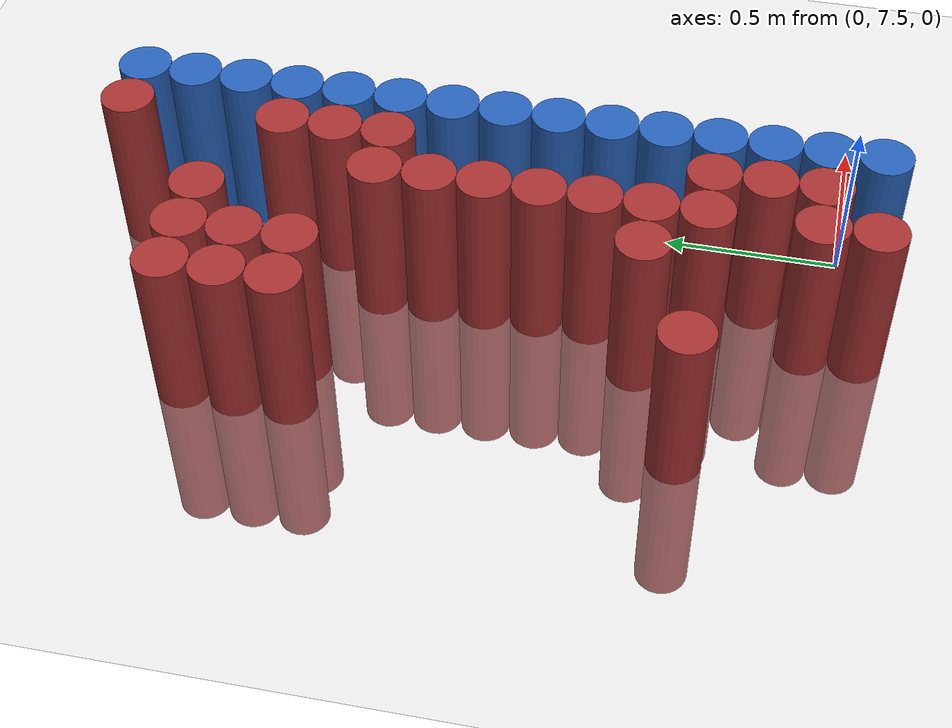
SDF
<sdf version="1.6">
 <world name="default">
  <model name="ground_plane">
   <static>1</static>
   <link name="link">
    <collision name="collision">
     <geometry><plane><normal>0 0 1</normal><size>100 100</size></plane></geometry>
     <surface><friction><ode><mu>100</mu><mu2>50</mu2></ode></friction></surface>
    </collision>
    <visual name="visual">
     <cast_shadows>0</cast_shadows>
     <geometry><plane><normal>0 0 1</normal><size>100 100</size></plane></geometry>
     <material>
      <script><uri>file://media/materials/scripts/gazebo.material</uri><name>Gazebo/Grey</name></script>
     </material>
    </visual>
   </link>
  </model>
  <model name="unit_cylinder_290">
   <static>1</static>
   <pose>-0.825000 7.875000 0.000000 0.000000 0.000000 0.000000</pose>
   <link name="link">
    <inertial>
     <mass>1</mass>
     <inertia><ixx>0.145833</ixx><ixy>0</ixy><ixz>0</ixz><iyy>0.145833</iyy><iyz>0</iyz><izz>0.125</izz></inertia>
    </inertial>
    <collision name="collision">
     <geometry><cylinder><radius>0.075000</radius><length>1</length></cylinder></geometry>
    </collision>
    <visual name="visual">
     <geometry><cylinder><radius>0.075000</radius><length>1</length></cylinder></geometry>
     <material>
      <ambient>0.648000 0.192000 0.192000 1</ambient>
      <diffuse>0.648000 0.192000 0.192000 1</diffuse>
     </material>
     <material>
      <script><name>Gazebo/Grey</name><uri>file://media/materials/scripts/gazebo.material</uri></script>
     </material>
    </visual>
    <sensor name="sensor_contact" type="contact"><contact><collision>collision</collision></contact></sensor>
   </link>
   <plugin filename="gz-sim-touchplugin-system" name="gz::sim::systems::TouchPlugin">
    <target>robot</target>
    <namespace>robot</namespace>
    <time>0.001</time>
    <enabled>true</enabled>
   </plugin>
  </model>
  <model name="unit_cylinder_291">
   <static>1</static>
   <pose>-0.825000 8.925000 0.000000 0.000000 0.000000 0.000000</pose>
   <link name="link">
    <inertial>
     <mass>1</mass>
     <inertia><ixx>0.145833</ixx><ixy>0</ixy><ixz>0</ixz><iyy>0.145833</iyy><iyz>0</iyz><izz>0.125</izz></inertia>
    </inertial>
    <collision name="collision">
     <geometry><cylinder><radius>0.075000</radius><length>1</length></cylinder></geometry>
    </collision>
    <visual name="visual">
     <geometry><cylinder><radius>0.075000</radius><length>1</length></cylinder></geometry>
     <material>
      <ambient>0.648000 0.192000 0.192000 1</ambient>
      <diffuse>0.648000 0.192000 0.192000 1</diffuse>
     </material>
     <material>
      <script><name>Gazebo/Grey</name><uri>file://media/materials/scripts/gazebo.material</uri></script>
     </material>
    </visual>
    <sensor name="sensor_contact" type="contact"><contact><collision>collision</collision></contact></sensor>
   </link>
   <plugin filename="gz-sim-touchplugin-system" name="gz::sim::systems::TouchPlugin">
    <target>robot</target>
    <namespace>robot</namespace>
    <time>0.001</time>
    <enabled>true</enabled>
   </plugin>
  </model>
  <model name="unit_cylinder_292">
   <static>1</static>
   <pose>-0.825000 9.075000 0.000000 0.000000 0.000000 0.000000</pose>
   <link name="link">
    <inertial>
     <mass>1</mass>
     <inertia><ixx>0.145833</ixx><ixy>0</ixy><ixz>0</ixz><iyy>0.145833</iyy><iyz>0</iyz><izz>0.125</izz></inertia>
    </inertial>
    <collision name="collision">
     <geometry><cylinder><radius>0.075000</radius><length>1</length></cylinder></geometry>
    </collision>
    <visual name="visual">
     <geometry><cylinder><radius>0.075000</radius><length>1</length></cylinder></geometry>
     <material>
      <ambient>0.648000 0.192000 0.192000 1</ambient>
      <diffuse>0.648000 0.192000 0.192000 1</diffuse>
     </material>
     <material>
      <script><name>Gazebo/Grey</name><uri>file://media/materials/scripts/gazebo.material</uri></script>
     </material>
    </visual>
    <sensor name="sensor_contact" type="contact"><contact><collision>collision</collision></contact></sensor>
   </link>
   <plugin filename="gz-sim-touchplugin-system" name="gz::sim::systems::TouchPlugin">
    <target>robot</target>
    <namespace>robot</namespace>
    <time>0.001</time>
    <enabled>true</enabled>
   </plugin>
  </model>
  <model name="unit_cylinder_293">
   <static>1</static>
   <pose>-0.825000 9.225000 0.000000 0.000000 0.000000 0.000000</pose>
   <link name="link">
    <inertial>
     <mass>1</mass>
     <inertia><ixx>0.145833</ixx><ixy>0</ixy><ixz>0</ixz><iyy>0.145833</iyy><iyz>0</iyz><izz>0.125</izz></inertia>
    </inertial>
    <collision name="collision">
     <geometry><cylinder><radius>0.075000</radius><length>1</length></cylinder></geometry>
    </collision>
    <visual name="visual">
     <geometry><cylinder><radius>0.075000</radius><length>1</length></cylinder></geometry>
     <material>
      <ambient>0.648000 0.192000 0.192000 1</ambient>
      <diffuse>0.648000 0.192000 0.192000 1</diffuse>
     </material>
     <material>
      <script><name>Gazebo/Grey</name><uri>file://media/materials/scripts/gazebo.material</uri></script>
     </material>
    </visual>
    <sensor name="sensor_contact" type="contact"><contact><collision>collision</collision></contact></sensor>
   </link>
   <plugin filename="gz-sim-touchplugin-system" name="gz::sim::systems::TouchPlugin">
    <target>robot</target>
    <namespace>robot</namespace>
    <time>0.001</time>
    <enabled>true</enabled>
   </plugin>
  </model>
  <model name="unit_cylinder_295">
   <static>1</static>
   <pose>-0.675000 8.925000 0.000000 0.000000 0.000000 0.000000</pose>
   <link name="link">
    <inertial>
     <mass>1</mass>
     <inertia><ixx>0.145833</ixx><ixy>0</ixy><ixz>0</ixz><iyy>0.145833</iyy><iyz>0</iyz><izz>0.125</izz></inertia>
    </inertial>
    <collision name="collision">
     <geometry><cylinder><radius>0.075000</radius><length>1</length></cylinder></geometry>
    </collision>
    <visual name="visual">
     <geometry><cylinder><radius>0.075000</radius><length>1</length></cylinder></geometry>
     <material>
      <ambient>0.648000 0.192000 0.192000 1</ambient>
      <diffuse>0.648000 0.192000 0.192000 1</diffuse>
     </material>
     <material>
      <script><name>Gazebo/Grey</name><uri>file://media/materials/scripts/gazebo.material</uri></script>
     </material>
    </visual>
    <sensor name="sensor_contact" type="contact"><contact><collision>collision</collision></contact></sensor>
   </link>
   <plugin filename="gz-sim-touchplugin-system" name="gz::sim::systems::TouchPlugin">
    <target>robot</target>
    <namespace>robot</namespace>
    <time>0.001</time>
    <enabled>true</enabled>
   </plugin>
  </model>
  <model name="unit_cylinder_296">
   <static>1</static>
   <pose>-0.675000 9.075000 0.000000 0.000000 0.000000 0.000000</pose>
   <link name="link">
    <inertial>
     <mass>1</mass>
     <inertia><ixx>0.145833</ixx><ixy>0</ixy><ixz>0</ixz><iyy>0.145833</iyy><iyz>0</iyz><izz>0.125</izz></inertia>
    </inertial>
    <collision name="collision">
     <geometry><cylinder><radius>0.075000</radius><length>1</length></cylinder></geometry>
    </collision>
    <visual name="visual">
     <geometry><cylinder><radius>0.075000</radius><length>1</length></cylinder></geometry>
     <material>
      <ambient>0.648000 0.192000 0.192000 1</ambient>
      <diffuse>0.648000 0.192000 0.192000 1</diffuse>
     </material>
     <material>
      <script><name>Gazebo/Grey</name><uri>file://media/materials/scripts/gazebo.material</uri></script>
     </material>
    </visual>
    <sensor name="sensor_contact" type="contact"><contact><collision>collision</collision></contact></sensor>
   </link>
   <plugin filename="gz-sim-touchplugin-system" name="gz::sim::systems::TouchPlugin">
    <target>robot</target>
    <namespace>robot</namespace>
    <time>0.001</time>
    <enabled>true</enabled>
   </plugin>
  </model>
  <model name="unit_cylinder_297">
   <static>1</static>
   <pose>-0.675000 9.225000 0.000000 0.000000 0.000000 0.000000</pose>
   <link name="link">
    <inertial>
     <mass>1</mass>
     <inertia><ixx>0.145833</ixx><ixy>0</ixy><ixz>0</ixz><iyy>0.145833</iyy><iyz>0</iyz><izz>0.125</izz></inertia>
    </inertial>
    <collision name="collision">
     <geometry><cylinder><radius>0.075000</radius><length>1</length></cylinder></geometry>
    </collision>
    <visual name="visual">
     <geometry><cylinder><radius>0.075000</radius><length>1</length></cylinder></geometry>
     <material>
      <ambient>0.648000 0.192000 0.192000 1</ambient>
      <diffuse>0.648000 0.192000 0.192000 1</diffuse>
     </material>
     <material>
      <script><name>Gazebo/Grey</name><uri>file://media/materials/scripts/gazebo.material</uri></script>
     </material>
    </visual>
    <sensor name="sensor_contact" type="contact"><contact><collision>collision</collision></contact></sensor>
   </link>
   <plugin filename="gz-sim-touchplugin-system" name="gz::sim::systems::TouchPlugin">
    <target>robot</target>
    <namespace>robot</namespace>
    <time>0.001</time>
    <enabled>true</enabled>
   </plugin>
  </model>
  <model name="unit_cylinder_300">
   <static>1</static>
   <pose>-0.525000 8.025000 0.000000 0.000000 0.000000 0.000000</pose>
   <link name="link">
    <inertial>
     <mass>1</mass>
     <inertia><ixx>0.145833</ixx><ixy>0</ixy><ixz>0</ixz><iyy>0.145833</iyy><iyz>0</iyz><izz>0.125</izz></inertia>
    </inertial>
    <collision name="collision">
     <geometry><cylinder><radius>0.075000</radius><length>1</length></cylinder></geometry>
    </collision>
    <visual name="visual">
     <geometry><cylinder><radius>0.075000</radius><length>1</length></cylinder></geometry>
     <material>
      <ambient>0.648000 0.192000 0.192000 1</ambient>
      <diffuse>0.648000 0.192000 0.192000 1</diffuse>
     </material>
     <material>
      <script><name>Gazebo/Grey</name><uri>file://media/materials/scripts/gazebo.material</uri></script>
     </material>
    </visual>
    <sensor name="sensor_contact" type="contact"><contact><collision>collision</collision></contact></sensor>
   </link>
   <plugin filename="gz-sim-touchplugin-system" name="gz::sim::systems::TouchPlugin">
    <target>robot</target>
    <namespace>robot</namespace>
    <time>0.001</time>
    <enabled>true</enabled>
   </plugin>
  </model>
  <model name="unit_cylinder_301">
   <static>1</static>
   <pose>-0.525000 9.225000 0.000000 0.000000 0.000000 0.000000</pose>
   <link name="link">
    <inertial>
     <mass>1</mass>
     <inertia><ixx>0.145833</ixx><ixy>0</ixy><ixz>0</ixz><iyy>0.145833</iyy><iyz>0</iyz><izz>0.125</izz></inertia>
    </inertial>
    <collision name="collision">
     <geometry><cylinder><radius>0.075000</radius><length>1</length></cylinder></geometry>
    </collision>
    <visual name="visual">
     <geometry><cylinder><radius>0.075000</radius><length>1</length></cylinder></geometry>
     <material>
      <ambient>0.648000 0.192000 0.192000 1</ambient>
      <diffuse>0.648000 0.192000 0.192000 1</diffuse>
     </material>
     <material>
      <script><name>Gazebo/Grey</name><uri>file://media/materials/scripts/gazebo.material</uri></script>
     </material>
    </visual>
    <sensor name="sensor_contact" type="contact"><contact><collision>collision</collision></contact></sensor>
   </link>
   <plugin filename="gz-sim-touchplugin-system" name="gz::sim::systems::TouchPlugin">
    <target>robot</target>
    <namespace>robot</namespace>
    <time>0.001</time>
    <enabled>true</enabled>
   </plugin>
  </model>
  <model name="unit_cylinder_307">
   <static>1</static>
   <pose>-0.375000 7.425000 0.000000 0.000000 0.000000 0.000000</pose>
   <link name="link">
    <inertial>
     <mass>1</mass>
     <inertia><ixx>0.145833</ixx><ixy>0</ixy><ixz>0</ixz><iyy>0.145833</iyy><iyz>0</iyz><izz>0.125</izz></inertia>
    </inertial>
    <collision name="collision">
     <geometry><cylinder><radius>0.075000</radius><length>1</length></cylinder></geometry>
    </collision>
    <visual name="visual">
     <geometry><cylinder><radius>0.075000</radius><length>1</length></cylinder></geometry>
     <material>
      <ambient>0.648000 0.192000 0.192000 1</ambient>
      <diffuse>0.648000 0.192000 0.192000 1</diffuse>
     </material>
     <material>
      <script><name>Gazebo/Grey</name><uri>file://media/materials/scripts/gazebo.material</uri></script>
     </material>
    </visual>
    <sensor name="sensor_contact" type="contact"><contact><collision>collision</collision></contact></sensor>
   </link>
   <plugin filename="gz-sim-touchplugin-system" name="gz::sim::systems::TouchPlugin">
    <target>robot</target>
    <namespace>robot</namespace>
    <time>0.001</time>
    <enabled>true</enabled>
   </plugin>
  </model>
  <model name="unit_cylinder_308">
   <static>1</static>
   <pose>-0.375000 7.575000 0.000000 0.000000 0.000000 0.000000</pose>
   <link name="link">
    <inertial>
     <mass>1</mass>
     <inertia><ixx>0.145833</ixx><ixy>0</ixy><ixz>0</ixz><iyy>0.145833</iyy><iyz>0</iyz><izz>0.125</izz></inertia>
    </inertial>
    <collision name="collision">
     <geometry><cylinder><radius>0.075000</radius><length>1</length></cylinder></geometry>
    </collision>
    <visual name="visual">
     <geometry><cylinder><radius>0.075000</radius><length>1</length></cylinder></geometry>
     <material>
      <ambient>0.648000 0.192000 0.192000 1</ambient>
      <diffuse>0.648000 0.192000 0.192000 1</diffuse>
     </material>
     <material>
      <script><name>Gazebo/Grey</name><uri>file://media/materials/scripts/gazebo.material</uri></script>
     </material>
    </visual>
    <sensor name="sensor_contact" type="contact"><contact><collision>collision</collision></contact></sensor>
   </link>
   <plugin filename="gz-sim-touchplugin-system" name="gz::sim::systems::TouchPlugin">
    <target>robot</target>
    <namespace>robot</namespace>
    <time>0.001</time>
    <enabled>true</enabled>
   </plugin>
  </model>
  <model name="unit_cylinder_309">
   <static>1</static>
   <pose>-0.375000 7.875000 0.000000 0.000000 0.000000 0.000000</pose>
   <link name="link">
    <inertial>
     <mass>1</mass>
     <inertia><ixx>0.145833</ixx><ixy>0</ixy><ixz>0</ixz><iyy>0.145833</iyy><iyz>0</iyz><izz>0.125</izz></inertia>
    </inertial>
    <collision name="collision">
     <geometry><cylinder><radius>0.075000</radius><length>1</length></cylinder></geometry>
    </collision>
    <visual name="visual">
     <geometry><cylinder><radius>0.075000</radius><length>1</length></cylinder></geometry>
     <material>
      <ambient>0.648000 0.192000 0.192000 1</ambient>
      <diffuse>0.648000 0.192000 0.192000 1</diffuse>
     </material>
     <material>
      <script><name>Gazebo/Grey</name><uri>file://media/materials/scripts/gazebo.material</uri></script>
     </material>
    </visual>
    <sensor name="sensor_contact" type="contact"><contact><collision>collision</collision></contact></sensor>
   </link>
   <plugin filename="gz-sim-touchplugin-system" name="gz::sim::systems::TouchPlugin">
    <target>robot</target>
    <namespace>robot</namespace>
    <time>0.001</time>
    <enabled>true</enabled>
   </plugin>
  </model>
  <model name="unit_cylinder_310">
   <static>1</static>
   <pose>-0.375000 8.025000 0.000000 0.000000 0.000000 0.000000</pose>
   <link name="link">
    <inertial>
     <mass>1</mass>
     <inertia><ixx>0.145833</ixx><ixy>0</ixy><ixz>0</ixz><iyy>0.145833</iyy><iyz>0</iyz><izz>0.125</izz></inertia>
    </inertial>
    <collision name="collision">
     <geometry><cylinder><radius>0.075000</radius><length>1</length></cylinder></geometry>
    </collision>
    <visual name="visual">
     <geometry><cylinder><radius>0.075000</radius><length>1</length></cylinder></geometry>
     <material>
      <ambient>0.648000 0.192000 0.192000 1</ambient>
      <diffuse>0.648000 0.192000 0.192000 1</diffuse>
     </material>
     <material>
      <script><name>Gazebo/Grey</name><uri>file://media/materials/scripts/gazebo.material</uri></script>
     </material>
    </visual>
    <sensor name="sensor_contact" type="contact"><contact><collision>collision</collision></contact></sensor>
   </link>
   <plugin filename="gz-sim-touchplugin-system" name="gz::sim::systems::TouchPlugin">
    <target>robot</target>
    <namespace>robot</namespace>
    <time>0.001</time>
    <enabled>true</enabled>
   </plugin>
  </model>
  <model name="unit_cylinder_311">
   <static>1</static>
   <pose>-0.375000 8.175000 0.000000 0.000000 0.000000 0.000000</pose>
   <link name="link">
    <inertial>
     <mass>1</mass>
     <inertia><ixx>0.145833</ixx><ixy>0</ixy><ixz>0</ixz><iyy>0.145833</iyy><iyz>0</iyz><izz>0.125</izz></inertia>
    </inertial>
    <collision name="collision">
     <geometry><cylinder><radius>0.075000</radius><length>1</length></cylinder></geometry>
    </collision>
    <visual name="visual">
     <geometry><cylinder><radius>0.075000</radius><length>1</length></cylinder></geometry>
     <material>
      <ambient>0.648000 0.192000 0.192000 1</ambient>
      <diffuse>0.648000 0.192000 0.192000 1</diffuse>
     </material>
     <material>
      <script><name>Gazebo/Grey</name><uri>file://media/materials/scripts/gazebo.material</uri></script>
     </material>
    </visual>
    <sensor name="sensor_contact" type="contact"><contact><collision>collision</collision></contact></sensor>
   </link>
   <plugin filename="gz-sim-touchplugin-system" name="gz::sim::systems::TouchPlugin">
    <target>robot</target>
    <namespace>robot</namespace>
    <time>0.001</time>
    <enabled>true</enabled>
   </plugin>
  </model>
  <model name="unit_cylinder_312">
   <static>1</static>
   <pose>-0.375000 8.325000 0.000000 0.000000 0.000000 0.000000</pose>
   <link name="link">
    <inertial>
     <mass>1</mass>
     <inertia><ixx>0.145833</ixx><ixy>0</ixy><ixz>0</ixz><iyy>0.145833</iyy><iyz>0</iyz><izz>0.125</izz></inertia>
    </inertial>
    <collision name="collision">
     <geometry><cylinder><radius>0.075000</radius><length>1</length></cylinder></geometry>
    </collision>
    <visual name="visual">
     <geometry><cylinder><radius>0.075000</radius><length>1</length></cylinder></geometry>
     <material>
      <ambient>0.648000 0.192000 0.192000 1</ambient>
      <diffuse>0.648000 0.192000 0.192000 1</diffuse>
     </material>
     <material>
      <script><name>Gazebo/Grey</name><uri>file://media/materials/scripts/gazebo.material</uri></script>
     </material>
    </visual>
    <sensor name="sensor_contact" type="contact"><contact><collision>collision</collision></contact></sensor>
   </link>
   <plugin filename="gz-sim-touchplugin-system" name="gz::sim::systems::TouchPlugin">
    <target>robot</target>
    <namespace>robot</namespace>
    <time>0.001</time>
    <enabled>true</enabled>
   </plugin>
  </model>
  <model name="unit_cylinder_313">
   <static>1</static>
   <pose>-0.375000 8.475000 0.000000 0.000000 0.000000 0.000000</pose>
   <link name="link">
    <inertial>
     <mass>1</mass>
     <inertia><ixx>0.145833</ixx><ixy>0</ixy><ixz>0</ixz><iyy>0.145833</iyy><iyz>0</iyz><izz>0.125</izz></inertia>
    </inertial>
    <collision name="collision">
     <geometry><cylinder><radius>0.075000</radius><length>1</length></cylinder></geometry>
    </collision>
    <visual name="visual">
     <geometry><cylinder><radius>0.075000</radius><length>1</length></cylinder></geometry>
     <material>
      <ambient>0.648000 0.192000 0.192000 1</ambient>
      <diffuse>0.648000 0.192000 0.192000 1</diffuse>
     </material>
     <material>
      <script><name>Gazebo/Grey</name><uri>file://media/materials/scripts/gazebo.material</uri></script>
     </material>
    </visual>
    <sensor name="sensor_contact" type="contact"><contact><collision>collision</collision></contact></sensor>
   </link>
   <plugin filename="gz-sim-touchplugin-system" name="gz::sim::systems::TouchPlugin">
    <target>robot</target>
    <namespace>robot</namespace>
    <time>0.001</time>
    <enabled>true</enabled>
   </plugin>
  </model>
  <model name="unit_cylinder_314">
   <static>1</static>
   <pose>-0.375000 8.625000 0.000000 0.000000 0.000000 0.000000</pose>
   <link name="link">
    <inertial>
     <mass>1</mass>
     <inertia><ixx>0.145833</ixx><ixy>0</ixy><ixz>0</ixz><iyy>0.145833</iyy><iyz>0</iyz><izz>0.125</izz></inertia>
    </inertial>
    <collision name="collision">
     <geometry><cylinder><radius>0.075000</radius><length>1</length></cylinder></geometry>
    </collision>
    <visual name="visual">
     <geometry><cylinder><radius>0.075000</radius><length>1</length></cylinder></geometry>
     <material>
      <ambient>0.648000 0.192000 0.192000 1</ambient>
      <diffuse>0.648000 0.192000 0.192000 1</diffuse>
     </material>
     <material>
      <script><name>Gazebo/Grey</name><uri>file://media/materials/scripts/gazebo.material</uri></script>
     </material>
    </visual>
    <sensor name="sensor_contact" type="contact"><contact><collision>collision</collision></contact></sensor>
   </link>
   <plugin filename="gz-sim-touchplugin-system" name="gz::sim::systems::TouchPlugin">
    <target>robot</target>
    <namespace>robot</namespace>
    <time>0.001</time>
    <enabled>true</enabled>
   </plugin>
  </model>
  <model name="unit_cylinder_315">
   <static>1</static>
   <pose>-0.375000 8.775000 0.000000 0.000000 0.000000 0.000000</pose>
   <link name="link">
    <inertial>
     <mass>1</mass>
     <inertia><ixx>0.145833</ixx><ixy>0</ixy><ixz>0</ixz><iyy>0.145833</iyy><iyz>0</iyz><izz>0.125</izz></inertia>
    </inertial>
    <collision name="collision">
     <geometry><cylinder><radius>0.075000</radius><length>1</length></cylinder></geometry>
    </collision>
    <visual name="visual">
     <geometry><cylinder><radius>0.075000</radius><length>1</length></cylinder></geometry>
     <material>
      <ambient>0.648000 0.192000 0.192000 1</ambient>
      <diffuse>0.648000 0.192000 0.192000 1</diffuse>
     </material>
     <material>
      <script><name>Gazebo/Grey</name><uri>file://media/materials/scripts/gazebo.material</uri></script>
     </material>
    </visual>
    <sensor name="sensor_contact" type="contact"><contact><collision>collision</collision></contact></sensor>
   </link>
   <plugin filename="gz-sim-touchplugin-system" name="gz::sim::systems::TouchPlugin">
    <target>robot</target>
    <namespace>robot</namespace>
    <time>0.001</time>
    <enabled>true</enabled>
   </plugin>
  </model>
  <model name="unit_cylinder_324">
   <static>1</static>
   <pose>-0.225000 7.575000 0.000000 0.000000 0.000000 0.000000</pose>
   <link name="link">
    <inertial>
     <mass>1</mass>
     <inertia><ixx>0.145833</ixx><ixy>0</ixy><ixz>0</ixz><iyy>0.145833</iyy><iyz>0</iyz><izz>0.125</izz></inertia>
    </inertial>
    <collision name="collision">
     <geometry><cylinder><radius>0.075000</radius><length>1</length></cylinder></geometry>
    </collision>
    <visual name="visual">
     <geometry><cylinder><radius>0.075000</radius><length>1</length></cylinder></geometry>
     <material>
      <ambient>0.648000 0.192000 0.192000 1</ambient>
      <diffuse>0.648000 0.192000 0.192000 1</diffuse>
     </material>
     <material>
      <script><name>Gazebo/Grey</name><uri>file://media/materials/scripts/gazebo.material</uri></script>
     </material>
    </visual>
    <sensor name="sensor_contact" type="contact"><contact><collision>collision</collision></contact></sensor>
   </link>
   <plugin filename="gz-sim-touchplugin-system" name="gz::sim::systems::TouchPlugin">
    <target>robot</target>
    <namespace>robot</namespace>
    <time>0.001</time>
    <enabled>true</enabled>
   </plugin>
  </model>
  <model name="unit_cylinder_325">
   <static>1</static>
   <pose>-0.225000 7.725000 0.000000 0.000000 0.000000 0.000000</pose>
   <link name="link">
    <inertial>
     <mass>1</mass>
     <inertia><ixx>0.145833</ixx><ixy>0</ixy><ixz>0</ixz><iyy>0.145833</iyy><iyz>0</iyz><izz>0.125</izz></inertia>
    </inertial>
    <collision name="collision">
     <geometry><cylinder><radius>0.075000</radius><length>1</length></cylinder></geometry>
    </collision>
    <visual name="visual">
     <geometry><cylinder><radius>0.075000</radius><length>1</length></cylinder></geometry>
     <material>
      <ambient>0.648000 0.192000 0.192000 1</ambient>
      <diffuse>0.648000 0.192000 0.192000 1</diffuse>
     </material>
     <material>
      <script><name>Gazebo/Grey</name><uri>file://media/materials/scripts/gazebo.material</uri></script>
     </material>
    </visual>
    <sensor name="sensor_contact" type="contact"><contact><collision>collision</collision></contact></sensor>
   </link>
   <plugin filename="gz-sim-touchplugin-system" name="gz::sim::systems::TouchPlugin">
    <target>robot</target>
    <namespace>robot</namespace>
    <time>0.001</time>
    <enabled>true</enabled>
   </plugin>
  </model>
  <model name="unit_cylinder_326">
   <static>1</static>
   <pose>-0.225000 7.875000 0.000000 0.000000 0.000000 0.000000</pose>
   <link name="link">
    <inertial>
     <mass>1</mass>
     <inertia><ixx>0.145833</ixx><ixy>0</ixy><ixz>0</ixz><iyy>0.145833</iyy><iyz>0</iyz><izz>0.125</izz></inertia>
    </inertial>
    <collision name="collision">
     <geometry><cylinder><radius>0.075000</radius><length>1</length></cylinder></geometry>
    </collision>
    <visual name="visual">
     <geometry><cylinder><radius>0.075000</radius><length>1</length></cylinder></geometry>
     <material>
      <ambient>0.648000 0.192000 0.192000 1</ambient>
      <diffuse>0.648000 0.192000 0.192000 1</diffuse>
     </material>
     <material>
      <script><name>Gazebo/Grey</name><uri>file://media/materials/scripts/gazebo.material</uri></script>
     </material>
    </visual>
    <sensor name="sensor_contact" type="contact"><contact><collision>collision</collision></contact></sensor>
   </link>
   <plugin filename="gz-sim-touchplugin-system" name="gz::sim::systems::TouchPlugin">
    <target>robot</target>
    <namespace>robot</namespace>
    <time>0.001</time>
    <enabled>true</enabled>
   </plugin>
  </model>
  <model name="unit_cylinder_327">
   <static>1</static>
   <pose>-0.225000 8.775000 0.000000 0.000000 0.000000 0.000000</pose>
   <link name="link">
    <inertial>
     <mass>1</mass>
     <inertia><ixx>0.145833</ixx><ixy>0</ixy><ixz>0</ixz><iyy>0.145833</iyy><iyz>0</iyz><izz>0.125</izz></inertia>
    </inertial>
    <collision name="collision">
     <geometry><cylinder><radius>0.075000</radius><length>1</length></cylinder></geometry>
    </collision>
    <visual name="visual">
     <geometry><cylinder><radius>0.075000</radius><length>1</length></cylinder></geometry>
     <material>
      <ambient>0.648000 0.192000 0.192000 1</ambient>
      <diffuse>0.648000 0.192000 0.192000 1</diffuse>
     </material>
     <material>
      <script><name>Gazebo/Grey</name><uri>file://media/materials/scripts/gazebo.material</uri></script>
     </material>
    </visual>
    <sensor name="sensor_contact" type="contact"><contact><collision>collision</collision></contact></sensor>
   </link>
   <plugin filename="gz-sim-touchplugin-system" name="gz::sim::systems::TouchPlugin">
    <target>robot</target>
    <namespace>robot</namespace>
    <time>0.001</time>
    <enabled>true</enabled>
   </plugin>
  </model>
  <model name="unit_cylinder_328">
   <static>1</static>
   <pose>-0.225000 8.925000 0.000000 0.000000 0.000000 0.000000</pose>
   <link name="link">
    <inertial>
     <mass>1</mass>
     <inertia><ixx>0.145833</ixx><ixy>0</ixy><ixz>0</ixz><iyy>0.145833</iyy><iyz>0</iyz><izz>0.125</izz></inertia>
    </inertial>
    <collision name="collision">
     <geometry><cylinder><radius>0.075000</radius><length>1</length></cylinder></geometry>
    </collision>
    <visual name="visual">
     <geometry><cylinder><radius>0.075000</radius><length>1</length></cylinder></geometry>
     <material>
      <ambient>0.648000 0.192000 0.192000 1</ambient>
      <diffuse>0.648000 0.192000 0.192000 1</diffuse>
     </material>
     <material>
      <script><name>Gazebo/Grey</name><uri>file://media/materials/scripts/gazebo.material</uri></script>
     </material>
    </visual>
    <sensor name="sensor_contact" type="contact"><contact><collision>collision</collision></contact></sensor>
   </link>
   <plugin filename="gz-sim-touchplugin-system" name="gz::sim::systems::TouchPlugin">
    <target>robot</target>
    <namespace>robot</namespace>
    <time>0.001</time>
    <enabled>true</enabled>
   </plugin>
  </model>
  <model name="unit_cylinder_329">
   <static>1</static>
   <pose>-0.225000 9.075000 0.000000 0.000000 0.000000 0.000000</pose>
   <link name="link">
    <inertial>
     <mass>1</mass>
     <inertia><ixx>0.145833</ixx><ixy>0</ixy><ixz>0</ixz><iyy>0.145833</iyy><iyz>0</iyz><izz>0.125</izz></inertia>
    </inertial>
    <collision name="collision">
     <geometry><cylinder><radius>0.075000</radius><length>1</length></cylinder></geometry>
    </collision>
    <visual name="visual">
     <geometry><cylinder><radius>0.075000</radius><length>1</length></cylinder></geometry>
     <material>
      <ambient>0.648000 0.192000 0.192000 1</ambient>
      <diffuse>0.648000 0.192000 0.192000 1</diffuse>
     </material>
     <material>
      <script><name>Gazebo/Grey</name><uri>file://media/materials/scripts/gazebo.material</uri></script>
     </material>
    </visual>
    <sensor name="sensor_contact" type="contact"><contact><collision>collision</collision></contact></sensor>
   </link>
   <plugin filename="gz-sim-touchplugin-system" name="gz::sim::systems::TouchPlugin">
    <target>robot</target>
    <namespace>robot</namespace>
    <time>0.001</time>
    <enabled>true</enabled>
   </plugin>
  </model>
  <model name="unit_cylinder_330">
   <static>1</static>
   <pose>-0.225000 9.525000 0.000000 0.000000 0.000000 0.000000</pose>
   <link name="link">
    <inertial>
     <mass>1</mass>
     <inertia><ixx>0.145833</ixx><ixy>0</ixy><ixz>0</ixz><iyy>0.145833</iyy><iyz>0</iyz><izz>0.125</izz></inertia>
    </inertial>
    <collision name="collision">
     <geometry><cylinder><radius>0.075000</radius><length>1</length></cylinder></geometry>
    </collision>
    <visual name="visual">
     <geometry><cylinder><radius>0.075000</radius><length>1</length></cylinder></geometry>
     <material>
      <ambient>0.648000 0.192000 0.192000 1</ambient>
      <diffuse>0.648000 0.192000 0.192000 1</diffuse>
     </material>
     <material>
      <script><name>Gazebo/Grey</name><uri>file://media/materials/scripts/gazebo.material</uri></script>
     </material>
    </visual>
    <sensor name="sensor_contact" type="contact"><contact><collision>collision</collision></contact></sensor>
   </link>
   <plugin filename="gz-sim-touchplugin-system" name="gz::sim::systems::TouchPlugin">
    <target>robot</target>
    <namespace>robot</namespace>
    <time>0.001</time>
    <enabled>true</enabled>
   </plugin>
  </model>
  <model name="unit_cylinder_346">
   <static>1</static>
   <pose>-0.075000 7.425000 0.000000 0.000000 0.000000 0.000000</pose>
   <link name="link">
    <inertial>
     <mass>1</mass>
     <inertia><ixx>0.145833</ixx><ixy>0</ixy><ixz>0</ixz><iyy>0.145833</iyy><iyz>0</iyz><izz>0.125</izz></inertia>
    </inertial>
    <collision name="collision">
     <geometry><cylinder><radius>0.075000</radius><length>1</length></cylinder></geometry>
    </collision>
    <visual name="visual">
     <geometry><cylinder><radius>0.075000</radius><length>1</length></cylinder></geometry>
     <material>
      <ambient>0.152000 0.379000 0.720000 1</ambient>
      <diffuse>0.152000 0.379000 0.720000 1</diffuse>
     </material>
     <material>
      <script><name>Gazebo/Grey</name><uri>file://media/materials/scripts/gazebo.material</uri></script>
     </material>
    </visual>
    <sensor name="sensor_contact" type="contact"><contact><collision>collision</collision></contact></sensor>
   </link>
   <plugin filename="gz-sim-touchplugin-system" name="gz::sim::systems::TouchPlugin">
    <target>robot</target>
    <namespace>robot</namespace>
    <time>0.001</time>
    <enabled>true</enabled>
   </plugin>
  </model>
  <model name="unit_cylinder_347">
   <static>1</static>
   <pose>-0.075000 7.575000 0.000000 0.000000 0.000000 0.000000</pose>
   <link name="link">
    <inertial>
     <mass>1</mass>
     <inertia><ixx>0.145833</ixx><ixy>0</ixy><ixz>0</ixz><iyy>0.145833</iyy><iyz>0</iyz><izz>0.125</izz></inertia>
    </inertial>
    <collision name="collision">
     <geometry><cylinder><radius>0.075000</radius><length>1</length></cylinder></geometry>
    </collision>
    <visual name="visual">
     <geometry><cylinder><radius>0.075000</radius><length>1</length></cylinder></geometry>
     <material>
      <ambient>0.152000 0.379000 0.720000 1</ambient>
      <diffuse>0.152000 0.379000 0.720000 1</diffuse>
     </material>
     <material>
      <script><name>Gazebo/Grey</name><uri>file://media/materials/scripts/gazebo.material</uri></script>
     </material>
    </visual>
    <sensor name="sensor_contact" type="contact"><contact><collision>collision</collision></contact></sensor>
   </link>
   <plugin filename="gz-sim-touchplugin-system" name="gz::sim::systems::TouchPlugin">
    <target>robot</target>
    <namespace>robot</namespace>
    <time>0.001</time>
    <enabled>true</enabled>
   </plugin>
  </model>
  <model name="unit_cylinder_348">
   <static>1</static>
   <pose>-0.075000 7.725000 0.000000 0.000000 0.000000 0.000000</pose>
   <link name="link">
    <inertial>
     <mass>1</mass>
     <inertia><ixx>0.145833</ixx><ixy>0</ixy><ixz>0</ixz><iyy>0.145833</iyy><iyz>0</iyz><izz>0.125</izz></inertia>
    </inertial>
    <collision name="collision">
     <geometry><cylinder><radius>0.075000</radius><length>1</length></cylinder></geometry>
    </collision>
    <visual name="visual">
     <geometry><cylinder><radius>0.075000</radius><length>1</length></cylinder></geometry>
     <material>
      <ambient>0.152000 0.379000 0.720000 1</ambient>
      <diffuse>0.152000 0.379000 0.720000 1</diffuse>
     </material>
     <material>
      <script><name>Gazebo/Grey</name><uri>file://media/materials/scripts/gazebo.material</uri></script>
     </material>
    </visual>
    <sensor name="sensor_contact" type="contact"><contact><collision>collision</collision></contact></sensor>
   </link>
   <plugin filename="gz-sim-touchplugin-system" name="gz::sim::systems::TouchPlugin">
    <target>robot</target>
    <namespace>robot</namespace>
    <time>0.001</time>
    <enabled>true</enabled>
   </plugin>
  </model>
  <model name="unit_cylinder_349">
   <static>1</static>
   <pose>-0.075000 7.875000 0.000000 0.000000 0.000000 0.000000</pose>
   <link name="link">
    <inertial>
     <mass>1</mass>
     <inertia><ixx>0.145833</ixx><ixy>0</ixy><ixz>0</ixz><iyy>0.145833</iyy><iyz>0</iyz><izz>0.125</izz></inertia>
    </inertial>
    <collision name="collision">
     <geometry><cylinder><radius>0.075000</radius><length>1</length></cylinder></geometry>
    </collision>
    <visual name="visual">
     <geometry><cylinder><radius>0.075000</radius><length>1</length></cylinder></geometry>
     <material>
      <ambient>0.152000 0.379000 0.720000 1</ambient>
      <diffuse>0.152000 0.379000 0.720000 1</diffuse>
     </material>
     <material>
      <script><name>Gazebo/Grey</name><uri>file://media/materials/scripts/gazebo.material</uri></script>
     </material>
    </visual>
    <sensor name="sensor_contact" type="contact"><contact><collision>collision</collision></contact></sensor>
   </link>
   <plugin filename="gz-sim-touchplugin-system" name="gz::sim::systems::TouchPlugin">
    <target>robot</target>
    <namespace>robot</namespace>
    <time>0.001</time>
    <enabled>true</enabled>
   </plugin>
  </model>
  <model name="unit_cylinder_350">
   <static>1</static>
   <pose>-0.075000 8.025000 0.000000 0.000000 0.000000 0.000000</pose>
   <link name="link">
    <inertial>
     <mass>1</mass>
     <inertia><ixx>0.145833</ixx><ixy>0</ixy><ixz>0</ixz><iyy>0.145833</iyy><iyz>0</iyz><izz>0.125</izz></inertia>
    </inertial>
    <collision name="collision">
     <geometry><cylinder><radius>0.075000</radius><length>1</length></cylinder></geometry>
    </collision>
    <visual name="visual">
     <geometry><cylinder><radius>0.075000</radius><length>1</length></cylinder></geometry>
     <material>
      <ambient>0.152000 0.379000 0.720000 1</ambient>
      <diffuse>0.152000 0.379000 0.720000 1</diffuse>
     </material>
     <material>
      <script><name>Gazebo/Grey</name><uri>file://media/materials/scripts/gazebo.material</uri></script>
     </material>
    </visual>
    <sensor name="sensor_contact" type="contact"><contact><collision>collision</collision></contact></sensor>
   </link>
   <plugin filename="gz-sim-touchplugin-system" name="gz::sim::systems::TouchPlugin">
    <target>robot</target>
    <namespace>robot</namespace>
    <time>0.001</time>
    <enabled>true</enabled>
   </plugin>
  </model>
  <model name="unit_cylinder_351">
   <static>1</static>
   <pose>-0.075000 8.175000 0.000000 0.000000 0.000000 0.000000</pose>
   <link name="link">
    <inertial>
     <mass>1</mass>
     <inertia><ixx>0.145833</ixx><ixy>0</ixy><ixz>0</ixz><iyy>0.145833</iyy><iyz>0</iyz><izz>0.125</izz></inertia>
    </inertial>
    <collision name="collision">
     <geometry><cylinder><radius>0.075000</radius><length>1</length></cylinder></geometry>
    </collision>
    <visual name="visual">
     <geometry><cylinder><radius>0.075000</radius><length>1</length></cylinder></geometry>
     <material>
      <ambient>0.152000 0.379000 0.720000 1</ambient>
      <diffuse>0.152000 0.379000 0.720000 1</diffuse>
     </material>
     <material>
      <script><name>Gazebo/Grey</name><uri>file://media/materials/scripts/gazebo.material</uri></script>
     </material>
    </visual>
    <sensor name="sensor_contact" type="contact"><contact><collision>collision</collision></contact></sensor>
   </link>
   <plugin filename="gz-sim-touchplugin-system" name="gz::sim::systems::TouchPlugin">
    <target>robot</target>
    <namespace>robot</namespace>
    <time>0.001</time>
    <enabled>true</enabled>
   </plugin>
  </model>
  <model name="unit_cylinder_352">
   <static>1</static>
   <pose>-0.075000 8.325000 0.000000 0.000000 0.000000 0.000000</pose>
   <link name="link">
    <inertial>
     <mass>1</mass>
     <inertia><ixx>0.145833</ixx><ixy>0</ixy><ixz>0</ixz><iyy>0.145833</iyy><iyz>0</iyz><izz>0.125</izz></inertia>
    </inertial>
    <collision name="collision">
     <geometry><cylinder><radius>0.075000</radius><length>1</length></cylinder></geometry>
    </collision>
    <visual name="visual">
     <geometry><cylinder><radius>0.075000</radius><length>1</length></cylinder></geometry>
     <material>
      <ambient>0.152000 0.379000 0.720000 1</ambient>
      <diffuse>0.152000 0.379000 0.720000 1</diffuse>
     </material>
     <material>
      <script><name>Gazebo/Grey</name><uri>file://media/materials/scripts/gazebo.material</uri></script>
     </material>
    </visual>
    <sensor name="sensor_contact" type="contact"><contact><collision>collision</collision></contact></sensor>
   </link>
   <plugin filename="gz-sim-touchplugin-system" name="gz::sim::systems::TouchPlugin">
    <target>robot</target>
    <namespace>robot</namespace>
    <time>0.001</time>
    <enabled>true</enabled>
   </plugin>
  </model>
  <model name="unit_cylinder_353">
   <static>1</static>
   <pose>-0.075000 8.475000 0.000000 0.000000 0.000000 0.000000</pose>
   <link name="link">
    <inertial>
     <mass>1</mass>
     <inertia><ixx>0.145833</ixx><ixy>0</ixy><ixz>0</ixz><iyy>0.145833</iyy><iyz>0</iyz><izz>0.125</izz></inertia>
    </inertial>
    <collision name="collision">
     <geometry><cylinder><radius>0.075000</radius><length>1</length></cylinder></geometry>
    </collision>
    <visual name="visual">
     <geometry><cylinder><radius>0.075000</radius><length>1</length></cylinder></geometry>
     <material>
      <ambient>0.152000 0.379000 0.720000 1</ambient>
      <diffuse>0.152000 0.379000 0.720000 1</diffuse>
     </material>
     <material>
      <script><name>Gazebo/Grey</name><uri>file://media/materials/scripts/gazebo.material</uri></script>
     </material>
    </visual>
    <sensor name="sensor_contact" type="contact"><contact><collision>collision</collision></contact></sensor>
   </link>
   <plugin filename="gz-sim-touchplugin-system" name="gz::sim::systems::TouchPlugin">
    <target>robot</target>
    <namespace>robot</namespace>
    <time>0.001</time>
    <enabled>true</enabled>
   </plugin>
  </model>
  <model name="unit_cylinder_354">
   <static>1</static>
   <pose>-0.075000 8.625000 0.000000 0.000000 0.000000 0.000000</pose>
   <link name="link">
    <inertial>
     <mass>1</mass>
     <inertia><ixx>0.145833</ixx><ixy>0</ixy><ixz>0</ixz><iyy>0.145833</iyy><iyz>0</iyz><izz>0.125</izz></inertia>
    </inertial>
    <collision name="collision">
     <geometry><cylinder><radius>0.075000</radius><length>1</length></cylinder></geometry>
    </collision>
    <visual name="visual">
     <geometry><cylinder><radius>0.075000</radius><length>1</length></cylinder></geometry>
     <material>
      <ambient>0.152000 0.379000 0.720000 1</ambient>
      <diffuse>0.152000 0.379000 0.720000 1</diffuse>
     </material>
     <material>
      <script><name>Gazebo/Grey</name><uri>file://media/materials/scripts/gazebo.material</uri></script>
     </material>
    </visual>
    <sensor name="sensor_contact" type="contact"><contact><collision>collision</collision></contact></sensor>
   </link>
   <plugin filename="gz-sim-touchplugin-system" name="gz::sim::systems::TouchPlugin">
    <target>robot</target>
    <namespace>robot</namespace>
    <time>0.001</time>
    <enabled>true</enabled>
   </plugin>
  </model>
  <model name="unit_cylinder_355">
   <static>1</static>
   <pose>-0.075000 8.775000 0.000000 0.000000 0.000000 0.000000</pose>
   <link name="link">
    <inertial>
     <mass>1</mass>
     <inertia><ixx>0.145833</ixx><ixy>0</ixy><ixz>0</ixz><iyy>0.145833</iyy><iyz>0</iyz><izz>0.125</izz></inertia>
    </inertial>
    <collision name="collision">
     <geometry><cylinder><radius>0.075000</radius><length>1</length></cylinder></geometry>
    </collision>
    <visual name="visual">
     <geometry><cylinder><radius>0.075000</radius><length>1</length></cylinder></geometry>
     <material>
      <ambient>0.152000 0.379000 0.720000 1</ambient>
      <diffuse>0.152000 0.379000 0.720000 1</diffuse>
     </material>
     <material>
      <script><name>Gazebo/Grey</name><uri>file://media/materials/scripts/gazebo.material</uri></script>
     </material>
    </visual>
    <sensor name="sensor_contact" type="contact"><contact><collision>collision</collision></contact></sensor>
   </link>
   <plugin filename="gz-sim-touchplugin-system" name="gz::sim::systems::TouchPlugin">
    <target>robot</target>
    <namespace>robot</namespace>
    <time>0.001</time>
    <enabled>true</enabled>
   </plugin>
  </model>
  <model name="unit_cylinder_356">
   <static>1</static>
   <pose>-0.075000 8.925000 0.000000 0.000000 0.000000 0.000000</pose>
   <link name="link">
    <inertial>
     <mass>1</mass>
     <inertia><ixx>0.145833</ixx><ixy>0</ixy><ixz>0</ixz><iyy>0.145833</iyy><iyz>0</iyz><izz>0.125</izz></inertia>
    </inertial>
    <collision name="collision">
     <geometry><cylinder><radius>0.075000</radius><length>1</length></cylinder></geometry>
    </collision>
    <visual name="visual">
     <geometry><cylinder><radius>0.075000</radius><length>1</length></cylinder></geometry>
     <material>
      <ambient>0.152000 0.379000 0.720000 1</ambient>
      <diffuse>0.152000 0.379000 0.720000 1</diffuse>
     </material>
     <material>
      <script><name>Gazebo/Grey</name><uri>file://media/materials/scripts/gazebo.material</uri></script>
     </material>
    </visual>
    <sensor name="sensor_contact" type="contact"><contact><collision>collision</collision></contact></sensor>
   </link>
   <plugin filename="gz-sim-touchplugin-system" name="gz::sim::systems::TouchPlugin">
    <target>robot</target>
    <namespace>robot</namespace>
    <time>0.001</time>
    <enabled>true</enabled>
   </plugin>
  </model>
  <model name="unit_cylinder_357">
   <static>1</static>
   <pose>-0.075000 9.075000 0.000000 0.000000 0.000000 0.000000</pose>
   <link name="link">
    <inertial>
     <mass>1</mass>
     <inertia><ixx>0.145833</ixx><ixy>0</ixy><ixz>0</ixz><iyy>0.145833</iyy><iyz>0</iyz><izz>0.125</izz></inertia>
    </inertial>
    <collision name="collision">
     <geometry><cylinder><radius>0.075000</radius><length>1</length></cylinder></geometry>
    </collision>
    <visual name="visual">
     <geometry><cylinder><radius>0.075000</radius><length>1</length></cylinder></geometry>
     <material>
      <ambient>0.152000 0.379000 0.720000 1</ambient>
      <diffuse>0.152000 0.379000 0.720000 1</diffuse>
     </material>
     <material>
      <script><name>Gazebo/Grey</name><uri>file://media/materials/scripts/gazebo.material</uri></script>
     </material>
    </visual>
    <sensor name="sensor_contact" type="contact"><contact><collision>collision</collision></contact></sensor>
   </link>
   <plugin filename="gz-sim-touchplugin-system" name="gz::sim::systems::TouchPlugin">
    <target>robot</target>
    <namespace>robot</namespace>
    <time>0.001</time>
    <enabled>true</enabled>
   </plugin>
  </model>
  <model name="unit_cylinder_358">
   <static>1</static>
   <pose>-0.075000 9.225000 0.000000 0.000000 0.000000 0.000000</pose>
   <link name="link">
    <inertial>
     <mass>1</mass>
     <inertia><ixx>0.145833</ixx><ixy>0</ixy><ixz>0</ixz><iyy>0.145833</iyy><iyz>0</iyz><izz>0.125</izz></inertia>
    </inertial>
    <collision name="collision">
     <geometry><cylinder><radius>0.075000</radius><length>1</length></cylinder></geometry>
    </collision>
    <visual name="visual">
     <geometry><cylinder><radius>0.075000</radius><length>1</length></cylinder></geometry>
     <material>
      <ambient>0.152000 0.379000 0.720000 1</ambient>
      <diffuse>0.152000 0.379000 0.720000 1</diffuse>
     </material>
     <material>
      <script><name>Gazebo/Grey</name><uri>file://media/materials/scripts/gazebo.material</uri></script>
     </material>
    </visual>
    <sensor name="sensor_contact" type="contact"><contact><collision>collision</collision></contact></sensor>
   </link>
   <plugin filename="gz-sim-touchplugin-system" name="gz::sim::systems::TouchPlugin">
    <target>robot</target>
    <namespace>robot</namespace>
    <time>0.001</time>
    <enabled>true</enabled>
   </plugin>
  </model>
  <model name="unit_cylinder_359">
   <static>1</static>
   <pose>-0.075000 9.375000 0.000000 0.000000 0.000000 0.000000</pose>
   <link name="link">
    <inertial>
     <mass>1</mass>
     <inertia><ixx>0.145833</ixx><ixy>0</ixy><ixz>0</ixz><iyy>0.145833</iyy><iyz>0</iyz><izz>0.125</izz></inertia>
    </inertial>
    <collision name="collision">
     <geometry><cylinder><radius>0.075000</radius><length>1</length></cylinder></geometry>
    </collision>
    <visual name="visual">
     <geometry><cylinder><radius>0.075000</radius><length>1</length></cylinder></geometry>
     <material>
      <ambient>0.152000 0.379000 0.720000 1</ambient>
      <diffuse>0.152000 0.379000 0.720000 1</diffuse>
     </material>
     <material>
      <script><name>Gazebo/Grey</name><uri>file://media/materials/scripts/gazebo.material</uri></script>
     </material>
    </visual>
    <sensor name="sensor_contact" type="contact"><contact><collision>collision</collision></contact></sensor>
   </link>
   <plugin filename="gz-sim-touchplugin-system" name="gz::sim::systems::TouchPlugin">
    <target>robot</target>
    <namespace>robot</namespace>
    <time>0.001</time>
    <enabled>true</enabled>
   </plugin>
  </model>
  <model name="unit_cylinder_360">
   <static>1</static>
   <pose>-0.075000 9.525000 0.000000 0.000000 0.000000 0.000000</pose>
   <link name="link">
    <inertial>
     <mass>1</mass>
     <inertia><ixx>0.145833</ixx><ixy>0</ixy><ixz>0</ixz><iyy>0.145833</iyy><iyz>0</iyz><izz>0.125</izz></inertia>
    </inertial>
    <collision name="collision">
     <geometry><cylinder><radius>0.075000</radius><length>1</length></cylinder></geometry>
    </collision>
    <visual name="visual">
     <geometry><cylinder><radius>0.075000</radius><length>1</length></cylinder></geometry>
     <material>
      <ambient>0.152000 0.379000 0.720000 1</ambient>
      <diffuse>0.152000 0.379000 0.720000 1</diffuse>
     </material>
     <material>
      <script><name>Gazebo/Grey</name><uri>file://media/materials/scripts/gazebo.material</uri></script>
     </material>
    </visual>
    <sensor name="sensor_contact" type="contact"><contact><collision>collision</collision></contact></sensor>
   </link>
   <plugin filename="gz-sim-touchplugin-system" name="gz::sim::systems::TouchPlugin">
    <target>robot</target>
    <namespace>robot</namespace>
    <time>0.001</time>
    <enabled>true</enabled>
   </plugin>
  </model>
 </world>
</sdf>
